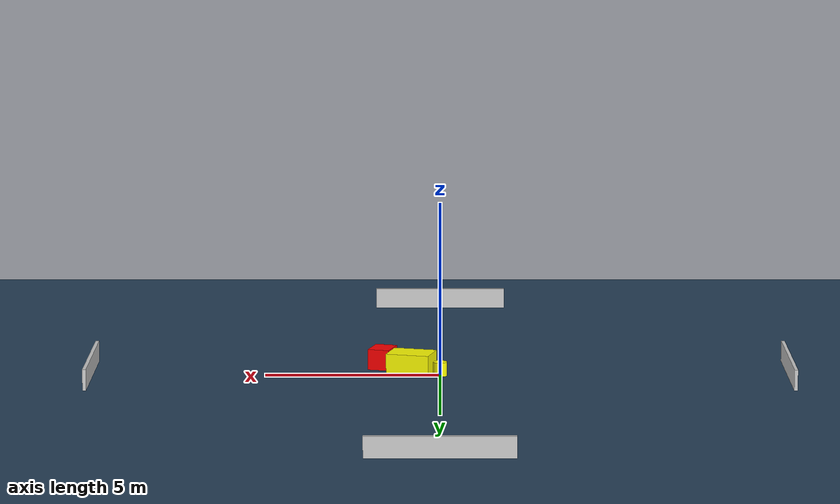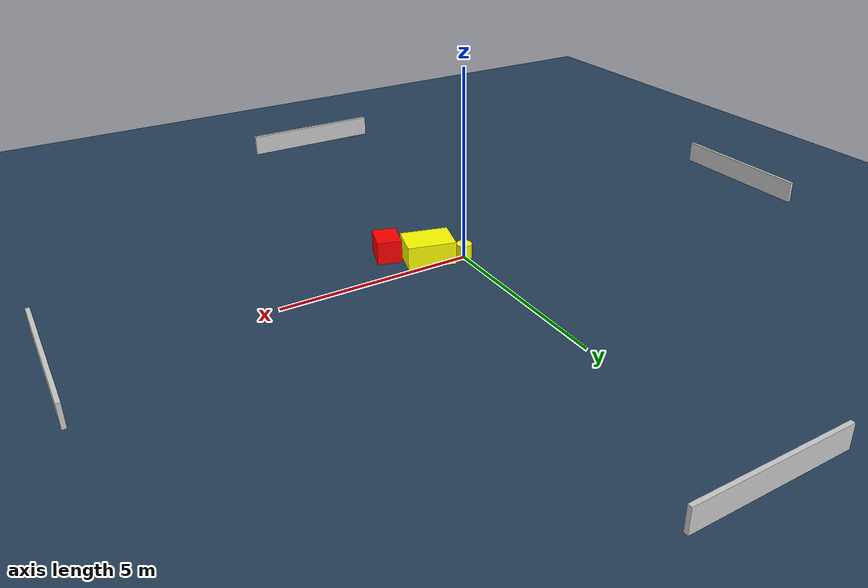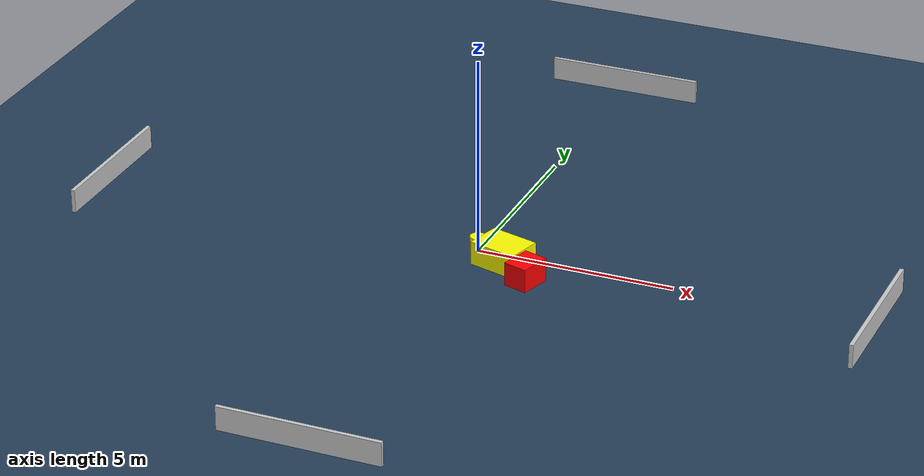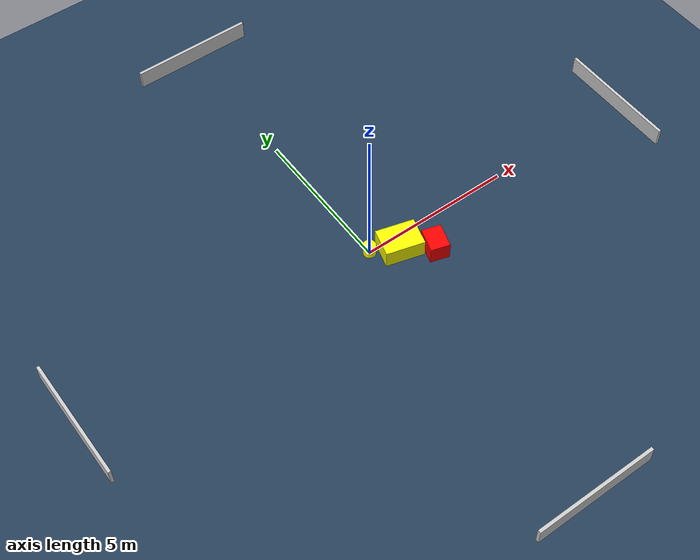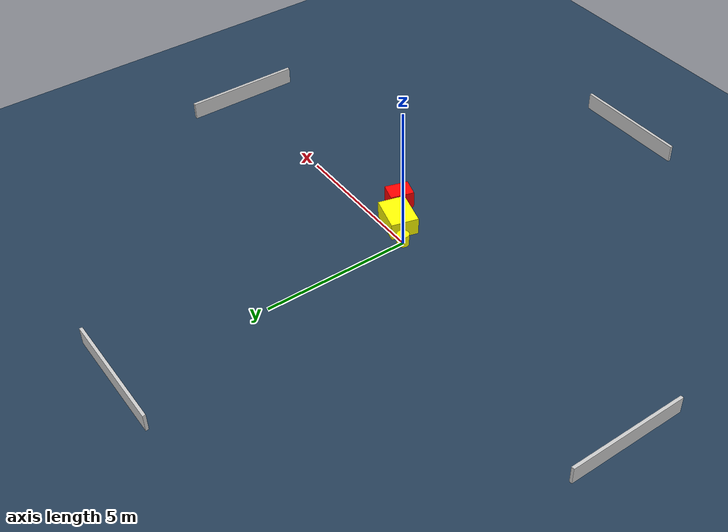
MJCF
<?xml version="1.0" ?>
<mujoco model="generated_environment">
  <option timestep="0.01" integrator="RK4" cone="elliptic"/>
  <default>
    <geom density="1"/>
  </default>
  <asset>
    <texture builtin="gradient" height="3072" name="skybox" rgb1="0.3 0.5 0.7" rgb2="0 0 0" type="skybox" width="512"/>
    <texture builtin="checker" height="300" name="groundplane" rgb1="0.2 0.3 0.4" rgb2="0.1 0.2 0.3" type="2d" width="300"/>
    <material name="groundplane" reflectance="0.2" texrepeat="5 5" texture="groundplane"/>
  </asset>
  <worldbody>
    <light dir="0 0 -1" directional="true" pos="0 0 1.5"/>
    <geom condim="3" friction="0.5 0.005 0.001" material="groundplane" name="floor" pos="0 0 0" size="0 0 0.05" type="plane"/>
    <body name="walls">
      <geom name="wall_1" condim="4" pos="-10.0 0.0 0.3" rgba="0.800000011920929 0.800000011920929 0.800000011920929 1.0" size="0.05 2.0 0.3" type="box"/>
      <geom name="wall_2" condim="4" pos="10.0 0.0 0.3" rgba="0.800000011920929 0.800000011920929 0.800000011920929 1.0" size="0.05 2.0 0.3" type="box"/>
      <geom name="wall_3" condim="4" pos="0.0 -10.0 0.3" rgba="0.800000011920929 0.800000011920929 0.800000011920929 1.0" size="2.0 0.05 0.3" type="box"/>
      <geom name="wall_4" condim="4" pos="0.0 10.0 0.3" rgba="0.800000011920929 0.800000011920929 0.800000011920929 1.0" size="2.0 0.05 0.3" type="box"/>
    </body>
    <body name="robot">
      <joint name="joint_x" type="slide" pos="0 0 0" axis="1 0 0"/>
      <joint name="joint_y" type="slide" pos="0 0 0" axis="0 1 0"/>
      <geom name="robot" type="cylinder" pos="0.0 0.0 0.2" size="0.2 0.2 0.0" mass="5.0" friction="1.0 0.005 0.0001" condim="4" rgba="1.0 1.0 0.0 1.0"/>
    </body>
    <body name="obstacle_1_movable">
      <geom name="obstacle_1_movable" condim="4" pos="0.8286785173512803 -0.41447550846632536 0.3" euler="0 0 164.821143119952" friction="0.0 0.005 0.001" rgba="1.0 1.0 0.0 1.0" size="0.6258314223719863 0.4612829330031355 0.3" type="box" mass="0.1"/>
      <joint type="free"/>
    </body>
    <body name="obstacle_2_static">
      <geom name="obstacle_2_static" condim="4" pos="1.668209096683338 -1.0732042548647587 0.3" euler="0 0 253.37316506797842" friction="0.0 0.005 0.001" rgba="1.0 0.0 0.0 1.0" size="0.40245470383968296 0.31271752732968705 0.3" type="box"/>
    </body>
  </worldbody>
  <actuator>
    <motor name="actuator_x" joint="joint_x" gear="1" ctrlrange="-1 1"/>
    <motor name="actuator_y" joint="joint_y" gear="1" ctrlrange="-1 1"/>
  </actuator>
</mujoco>
